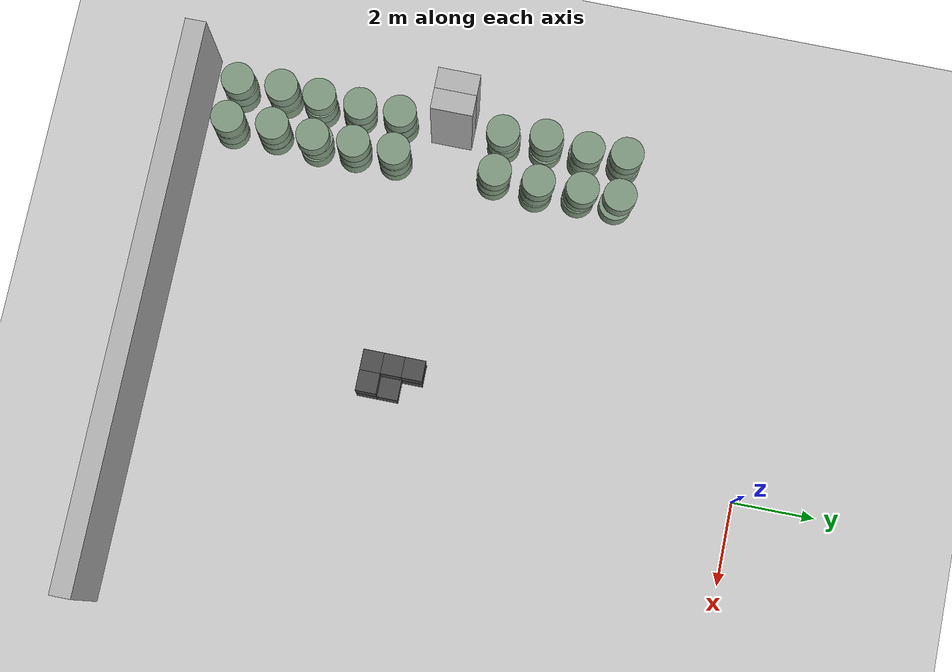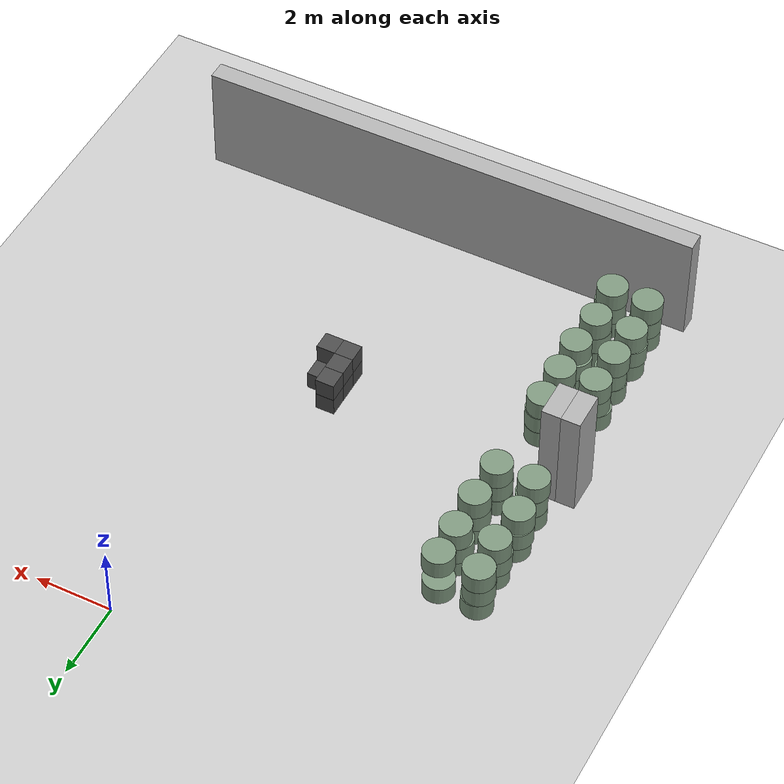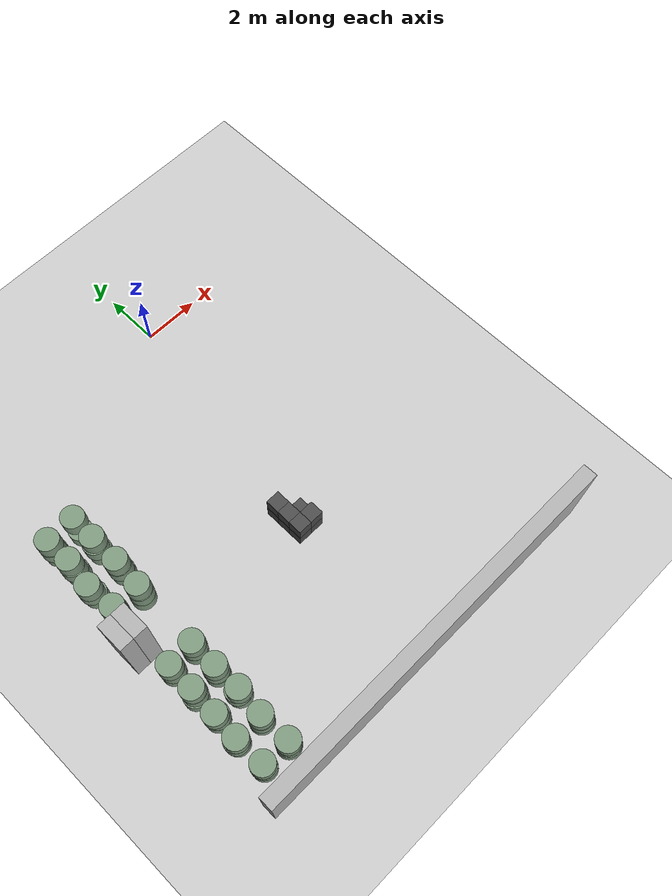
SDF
<sdf version="1.6">
 <world name="default">
  <include><uri>model://ground_plane</uri></include>
  <model name="wall_1">
   <pose>-8.0 -8.25 1.5 0 -0 0</pose>
   <static>True</static>
   <link name="link">
    <inertial>
     <mass>100</mass>
     <inertia>
      <ixx>0.166667</ixx>
      <ixy>0</ixy>
      <ixz>0</ixz>
      <iyy>0.166667</iyy>
      <iyz>0</iyz>
      <izz>0.166667</izz>
     </inertia>
    </inertial>
    <collision name="collision"><geometry><box><size>0.5 1.0 3.0</size></box></geometry></collision>
    <visual name="visual">
     <geometry><box><size>0.5 1.0 3.0</size></box></geometry>
     <material><ambient>0.7 0.7 0.7 1</ambient><diffuse>0.7 0.7 0.7 1</diffuse></material>
    </visual>
   </link>
  </model>
  <model name="wall_4">
   <pose>-7.5 -8.25 1.5 0 -0 0</pose>
   <static>True</static>
   <link name="link">
    <inertial>
     <mass>100</mass>
     <inertia>
      <ixx>0.166667</ixx>
      <ixy>0</ixy>
      <ixz>0</ixz>
      <iyy>0.166667</iyy>
      <iyz>0</iyz>
      <izz>0.166667</izz>
     </inertia>
    </inertial>
    <collision name="collision"><geometry><box><size>0.5 1.0 3.0</size></box></geometry></collision>
    <visual name="visual">
     <geometry><box><size>0.5 1.0 3.0</size></box></geometry>
     <material><ambient>0.7 0.7 0.7 1</ambient><diffuse>0.7 0.7 0.7 1</diffuse></material>
    </visual>
   </link>
  </model>
  <model name="wall_14">
   <pose>-1.5 -14.5 1.5 0 -0 0</pose>
   <static>True</static>
   <link name="link">
    <inertial>
     <mass>100</mass>
     <inertia>
      <ixx>0.166667</ixx>
      <ixy>0</ixy>
      <ixz>0</ixz>
      <iyy>0.166667</iyy>
      <iyz>0</iyz>
      <izz>0.166667</izz>
     </inertia>
    </inertial>
    <collision name="collision"><geometry><box><size>13.5 0.5 3.0</size></box></geometry></collision>
    <visual name="visual">
     <geometry><box><size>13.5 0.5 3.0</size></box></geometry>
     <material><ambient>0.7 0.7 0.7 1</ambient><diffuse>0.7 0.7 0.7 1</diffuse></material>
    </visual>
   </link>
  </model>
  <model name="unit_box_4">
   <pose>-1.5 -9.0 0.25 0 -0 0</pose>
   <static>True</static>
   <link name="link">
    <inertial>
     <mass>100</mass>
     <inertia>
      <ixx>0.166667</ixx>
      <ixy>0</ixy>
      <ixz>0</ixz>
      <iyy>0.166667</iyy>
      <iyz>0</iyz>
      <izz>0.166667</izz>
     </inertia>
    </inertial>
    <collision name="collision"><geometry><box><size>0.5 0.5 0.5</size></box></geometry></collision>
    <visual name="visual">
     <geometry><box><size>0.5 0.5 0.5</size></box></geometry>
     <material><ambient>0.3 0.3 0.3 1</ambient><diffuse>0.3 0.3 0.3 1</diffuse></material>
    </visual>
   </link>
  </model>
  <model name="unit_box_5">
   <pose>-1.5 -9.0 0.75 0 -0 0</pose>
   <static>True</static>
   <link name="link">
    <inertial>
     <mass>100</mass>
     <inertia>
      <ixx>0.166667</ixx>
      <ixy>0</ixy>
      <ixz>0</ixz>
      <iyy>0.166667</iyy>
      <iyz>0</iyz>
      <izz>0.166667</izz>
     </inertia>
    </inertial>
    <collision name="collision"><geometry><box><size>0.5 0.5 0.5</size></box></geometry></collision>
    <visual name="visual">
     <geometry><box><size>0.5 0.5 0.5</size></box></geometry>
     <material><ambient>0.3 0.3 0.3 1</ambient><diffuse>0.3 0.3 0.3 1</diffuse></material>
    </visual>
   </link>
  </model>
  <model name="unit_box_6">
   <pose>-1.5 -8.5 0.25 0 -0 0</pose>
   <static>True</static>
   <link name="link">
    <inertial>
     <mass>100</mass>
     <inertia>
      <ixx>0.166667</ixx>
      <ixy>0</ixy>
      <ixz>0</ixz>
      <iyy>0.166667</iyy>
      <iyz>0</iyz>
      <izz>0.166667</izz>
     </inertia>
    </inertial>
    <collision name="collision"><geometry><box><size>0.5 0.5 0.5</size></box></geometry></collision>
    <visual name="visual">
     <geometry><box><size>0.5 0.5 0.5</size></box></geometry>
     <material><ambient>0.3 0.3 0.3 1</ambient><diffuse>0.3 0.3 0.3 1</diffuse></material>
    </visual>
   </link>
  </model>
  <model name="unit_box_7">
   <pose>-1.5 -8.5 0.75 0 -0 0</pose>
   <static>True</static>
   <link name="link">
    <inertial>
     <mass>100</mass>
     <inertia>
      <ixx>0.166667</ixx>
      <ixy>0</ixy>
      <ixz>0</ixz>
      <iyy>0.166667</iyy>
      <iyz>0</iyz>
      <izz>0.166667</izz>
     </inertia>
    </inertial>
    <collision name="collision"><geometry><box><size>0.5 0.5 0.5</size></box></geometry></collision>
    <visual name="visual">
     <geometry><box><size>0.5 0.5 0.5</size></box></geometry>
     <material><ambient>0.3 0.3 0.3 1</ambient><diffuse>0.3 0.3 0.3 1</diffuse></material>
    </visual>
   </link>
  </model>
  <model name="unit_box_8">
   <pose>-1.5 -8.0 0.25 0 -0 0</pose>
   <static>True</static>
   <link name="link">
    <inertial>
     <mass>100</mass>
     <inertia>
      <ixx>0.166667</ixx>
      <ixy>0</ixy>
      <ixz>0</ixz>
      <iyy>0.166667</iyy>
      <iyz>0</iyz>
      <izz>0.166667</izz>
     </inertia>
    </inertial>
    <collision name="collision"><geometry><box><size>0.5 0.5 0.5</size></box></geometry></collision>
    <visual name="visual">
     <geometry><box><size>0.5 0.5 0.5</size></box></geometry>
     <material><ambient>0.3 0.3 0.3 1</ambient><diffuse>0.3 0.3 0.3 1</diffuse></material>
    </visual>
   </link>
  </model>
  <model name="unit_box_9">
   <pose>-1.5 -8.0 0.75 0 -0 0</pose>
   <static>True</static>
   <link name="link">
    <inertial>
     <mass>100</mass>
     <inertia>
      <ixx>0.166667</ixx>
      <ixy>0</ixy>
      <ixz>0</ixz>
      <iyy>0.166667</iyy>
      <iyz>0</iyz>
      <izz>0.166667</izz>
     </inertia>
    </inertial>
    <collision name="collision"><geometry><box><size>0.5 0.5 0.5</size></box></geometry></collision>
    <visual name="visual">
     <geometry><box><size>0.5 0.5 0.5</size></box></geometry>
     <material><ambient>0.3 0.3 0.3 1</ambient><diffuse>0.3 0.3 0.3 1</diffuse></material>
    </visual>
   </link>
  </model>
  <model name="unit_box_10">
   <pose>-1.0 -9.0 0.25 0 -0 0</pose>
   <static>True</static>
   <link name="link">
    <inertial>
     <mass>100</mass>
     <inertia>
      <ixx>0.166667</ixx>
      <ixy>0</ixy>
      <ixz>0</ixz>
      <iyy>0.166667</iyy>
      <iyz>0</iyz>
      <izz>0.166667</izz>
     </inertia>
    </inertial>
    <collision name="collision"><geometry><box><size>0.5 0.5 0.5</size></box></geometry></collision>
    <visual name="visual">
     <geometry><box><size>0.5 0.5 0.5</size></box></geometry>
     <material><ambient>0.3 0.3 0.3 1</ambient><diffuse>0.3 0.3 0.3 1</diffuse></material>
    </visual>
   </link>
  </model>
  <model name="unit_box_11">
   <pose>-1.0 -9.0 0.75 0 -0 0</pose>
   <static>True</static>
   <link name="link">
    <inertial>
     <mass>100</mass>
     <inertia>
      <ixx>0.166667</ixx>
      <ixy>0</ixy>
      <ixz>0</ixz>
      <iyy>0.166667</iyy>
      <iyz>0</iyz>
      <izz>0.166667</izz>
     </inertia>
    </inertial>
    <collision name="collision"><geometry><box><size>0.5 0.5 0.5</size></box></geometry></collision>
    <visual name="visual">
     <geometry><box><size>0.5 0.5 0.5</size></box></geometry>
     <material><ambient>0.3 0.3 0.3 1</ambient><diffuse>0.3 0.3 0.3 1</diffuse></material>
    </visual>
   </link>
  </model>
  <model name="unit_box_12">
   <pose>-1.0 -8.5 0.25 0 -0 0</pose>
   <static>True</static>
   <link name="link">
    <inertial>
     <mass>100</mass>
     <inertia>
      <ixx>0.166667</ixx>
      <ixy>0</ixy>
      <ixz>0</ixz>
      <iyy>0.166667</iyy>
      <iyz>0</iyz>
      <izz>0.166667</izz>
     </inertia>
    </inertial>
    <collision name="collision"><geometry><box><size>0.5 0.5 0.5</size></box></geometry></collision>
    <visual name="visual">
     <geometry><box><size>0.5 0.5 0.5</size></box></geometry>
     <material><ambient>0.3 0.3 0.3 1</ambient><diffuse>0.3 0.3 0.3 1</diffuse></material>
    </visual>
   </link>
  </model>
  <model name="unit_cylinder_0">
   <pose>-7.47507695646 -13.5184655306 0.25 0 -0 0</pose>
   <static>True</static>
   <link name="link">
    <inertial>
     <mass>100</mass>
     <inertia><ixx>0.145833</ixx><ixy>0</ixy><ixz>0</ixz><iyy>0.145833</iyy><iyz>0</iyz><izz>0.125</izz></inertia>
    </inertial>
    <collision name="collision">
     <geometry><cylinder><radius>0.4</radius><length>0.5</length></cylinder></geometry>
     <max_contacts>100</max_contacts>
    </collision>
    <visual name="visual">
     <geometry><cylinder><radius>0.4</radius><length>0.5</length></cylinder></geometry>
     <material><ambient>0.5 0.6 0.5 1</ambient><diffuse>0.5 0.6 0.5 1</diffuse></material>
    </visual>
   </link>
  </model>
  <model name="unit_cylinder_1">
   <pose>-7.48919808959 -13.4883875363 0.75 0 -0 0</pose>
   <static>True</static>
   <link name="link">
    <inertial>
     <mass>100</mass>
     <inertia><ixx>0.145833</ixx><ixy>0</ixy><ixz>0</ixz><iyy>0.145833</iyy><iyz>0</iyz><izz>0.125</izz></inertia>
    </inertial>
    <collision name="collision">
     <geometry><cylinder><radius>0.4</radius><length>0.5</length></cylinder></geometry>
     <max_contacts>100</max_contacts>
    </collision>
    <visual name="visual">
     <geometry><cylinder><radius>0.4</radius><length>0.5</length></cylinder></geometry>
     <material><ambient>0.5 0.6 0.5 1</ambient><diffuse>0.5 0.6 0.5 1</diffuse></material>
    </visual>
   </link>
  </model>
  <model name="unit_cylinder_2">
   <pose>-7.48988754666 -13.5205118433 1.25 0 -0 0</pose>
   <static>True</static>
   <link name="link">
    <inertial>
     <mass>100</mass>
     <inertia><ixx>0.145833</ixx><ixy>0</ixy><ixz>0</ixz><iyy>0.145833</iyy><iyz>0</iyz><izz>0.125</izz></inertia>
    </inertial>
    <collision name="collision">
     <geometry><cylinder><radius>0.4</radius><length>0.5</length></cylinder></geometry>
     <max_contacts>100</max_contacts>
    </collision>
    <visual name="visual">
     <geometry><cylinder><radius>0.4</radius><length>0.5</length></cylinder></geometry>
     <material><ambient>0.5 0.6 0.5 1</ambient><diffuse>0.5 0.6 0.5 1</diffuse></material>
    </visual>
   </link>
  </model>
  <model name="unit_cylinder_3">
   <pose>-7.53306076907 -12.4352780007 0.25 0 -0 0</pose>
   <static>True</static>
   <link name="link">
    <inertial>
     <mass>100</mass>
     <inertia><ixx>0.145833</ixx><ixy>0</ixy><ixz>0</ixz><iyy>0.145833</iyy><iyz>0</iyz><izz>0.125</izz></inertia>
    </inertial>
    <collision name="collision">
     <geometry><cylinder><radius>0.4</radius><length>0.5</length></cylinder></geometry>
     <max_contacts>100</max_contacts>
    </collision>
    <visual name="visual">
     <geometry><cylinder><radius>0.4</radius><length>0.5</length></cylinder></geometry>
     <material><ambient>0.5 0.6 0.5 1</ambient><diffuse>0.5 0.6 0.5 1</diffuse></material>
    </visual>
   </link>
  </model>
  <model name="unit_cylinder_4">
   <pose>-7.56399221615 -12.4517953891 0.75 0 -0 0</pose>
   <static>True</static>
   <link name="link">
    <inertial>
     <mass>100</mass>
     <inertia><ixx>0.145833</ixx><ixy>0</ixy><ixz>0</ixz><iyy>0.145833</iyy><iyz>0</iyz><izz>0.125</izz></inertia>
    </inertial>
    <collision name="collision">
     <geometry><cylinder><radius>0.4</radius><length>0.5</length></cylinder></geometry>
     <max_contacts>100</max_contacts>
    </collision>
    <visual name="visual">
     <geometry><cylinder><radius>0.4</radius><length>0.5</length></cylinder></geometry>
     <material><ambient>0.5 0.6 0.5 1</ambient><diffuse>0.5 0.6 0.5 1</diffuse></material>
    </visual>
   </link>
  </model>
  <model name="unit_cylinder_5">
   <pose>-7.53500089518 -12.4614403091 1.25 0 -0 0</pose>
   <static>True</static>
   <link name="link">
    <inertial>
     <mass>100</mass>
     <inertia><ixx>0.145833</ixx><ixy>0</ixy><ixz>0</ixz><iyy>0.145833</iyy><iyz>0</iyz><izz>0.125</izz></inertia>
    </inertial>
    <collision name="collision">
     <geometry><cylinder><radius>0.4</radius><length>0.5</length></cylinder></geometry>
     <max_contacts>100</max_contacts>
    </collision>
    <visual name="visual">
     <geometry><cylinder><radius>0.4</radius><length>0.5</length></cylinder></geometry>
     <material><ambient>0.5 0.6 0.5 1</ambient><diffuse>0.5 0.6 0.5 1</diffuse></material>
    </visual>
   </link>
  </model>
  <model name="unit_cylinder_6">
   <pose>-7.46616859764 -11.5065697093 0.25 0 -0 0</pose>
   <static>True</static>
   <link name="link">
    <inertial>
     <mass>100</mass>
     <inertia><ixx>0.145833</ixx><ixy>0</ixy><ixz>0</ixz><iyy>0.145833</iyy><iyz>0</iyz><izz>0.125</izz></inertia>
    </inertial>
    <collision name="collision">
     <geometry><cylinder><radius>0.4</radius><length>0.5</length></cylinder></geometry>
     <max_contacts>100</max_contacts>
    </collision>
    <visual name="visual">
     <geometry><cylinder><radius>0.4</radius><length>0.5</length></cylinder></geometry>
     <material><ambient>0.5 0.6 0.5 1</ambient><diffuse>0.5 0.6 0.5 1</diffuse></material>
    </visual>
   </link>
  </model>
  <model name="unit_cylinder_7">
   <pose>-7.4452347965 -11.5127901464 0.75 0 -0 0</pose>
   <static>True</static>
   <link name="link">
    <inertial>
     <mass>100</mass>
     <inertia><ixx>0.145833</ixx><ixy>0</ixy><ixz>0</ixz><iyy>0.145833</iyy><iyz>0</iyz><izz>0.125</izz></inertia>
    </inertial>
    <collision name="collision">
     <geometry><cylinder><radius>0.4</radius><length>0.5</length></cylinder></geometry>
     <max_contacts>100</max_contacts>
    </collision>
    <visual name="visual">
     <geometry><cylinder><radius>0.4</radius><length>0.5</length></cylinder></geometry>
     <material><ambient>0.5 0.6 0.5 1</ambient><diffuse>0.5 0.6 0.5 1</diffuse></material>
    </visual>
   </link>
  </model>
  <model name="unit_cylinder_8">
   <pose>-7.49248867613 -11.5228580544 1.25 0 -0 0</pose>
   <static>True</static>
   <link name="link">
    <inertial>
     <mass>100</mass>
     <inertia><ixx>0.145833</ixx><ixy>0</ixy><ixz>0</ixz><iyy>0.145833</iyy><iyz>0</iyz><izz>0.125</izz></inertia>
    </inertial>
    <collision name="collision">
     <geometry><cylinder><radius>0.4</radius><length>0.5</length></cylinder></geometry>
     <max_contacts>100</max_contacts>
    </collision>
    <visual name="visual">
     <geometry><cylinder><radius>0.4</radius><length>0.5</length></cylinder></geometry>
     <material><ambient>0.5 0.6 0.5 1</ambient><diffuse>0.5 0.6 0.5 1</diffuse></material>
    </visual>
   </link>
  </model>
  <model name="unit_cylinder_9">
   <pose>-7.48989591758 -10.567483093 0.25 0 -0 0</pose>
   <static>True</static>
   <link name="link">
    <inertial>
     <mass>100</mass>
     <inertia><ixx>0.145833</ixx><ixy>0</ixy><ixz>0</ixz><iyy>0.145833</iyy><iyz>0</iyz><izz>0.125</izz></inertia>
    </inertial>
    <collision name="collision">
     <geometry><cylinder><radius>0.4</radius><length>0.5</length></cylinder></geometry>
     <max_contacts>100</max_contacts>
    </collision>
    <visual name="visual">
     <geometry><cylinder><radius>0.4</radius><length>0.5</length></cylinder></geometry>
     <material><ambient>0.5 0.6 0.5 1</ambient><diffuse>0.5 0.6 0.5 1</diffuse></material>
    </visual>
   </link>
  </model>
  <model name="unit_cylinder_10">
   <pose>-7.44961254139 -10.5366978678 0.75 0 -0 0</pose>
   <static>True</static>
   <link name="link">
    <inertial>
     <mass>100</mass>
     <inertia><ixx>0.145833</ixx><ixy>0</ixy><ixz>0</ixz><iyy>0.145833</iyy><iyz>0</iyz><izz>0.125</izz></inertia>
    </inertial>
    <collision name="collision">
     <geometry><cylinder><radius>0.4</radius><length>0.5</length></cylinder></geometry>
     <max_contacts>100</max_contacts>
    </collision>
    <visual name="visual">
     <geometry><cylinder><radius>0.4</radius><length>0.5</length></cylinder></geometry>
     <material><ambient>0.5 0.6 0.5 1</ambient><diffuse>0.5 0.6 0.5 1</diffuse></material>
    </visual>
   </link>
  </model>
  <model name="unit_cylinder_11">
   <pose>-7.46090301996 -10.5196549501 1.25 0 -0 0</pose>
   <static>True</static>
   <link name="link">
    <inertial>
     <mass>100</mass>
     <inertia><ixx>0.145833</ixx><ixy>0</ixy><ixz>0</ixz><iyy>0.145833</iyy><iyz>0</iyz><izz>0.125</izz></inertia>
    </inertial>
    <collision name="collision">
     <geometry><cylinder><radius>0.4</radius><length>0.5</length></cylinder></geometry>
     <max_contacts>100</max_contacts>
    </collision>
    <visual name="visual">
     <geometry><cylinder><radius>0.4</radius><length>0.5</length></cylinder></geometry>
     <material><ambient>0.5 0.6 0.5 1</ambient><diffuse>0.5 0.6 0.5 1</diffuse></material>
    </visual>
   </link>
  </model>
  <model name="unit_cylinder_12">
   <pose>-7.45391872847 -9.52343154162 0.25 0 -0 0</pose>
   <static>True</static>
   <link name="link">
    <inertial>
     <mass>100</mass>
     <inertia><ixx>0.145833</ixx><ixy>0</ixy><ixz>0</ixz><iyy>0.145833</iyy><iyz>0</iyz><izz>0.125</izz></inertia>
    </inertial>
    <collision name="collision">
     <geometry><cylinder><radius>0.4</radius><length>0.5</length></cylinder></geometry>
     <max_contacts>100</max_contacts>
    </collision>
    <visual name="visual">
     <geometry><cylinder><radius>0.4</radius><length>0.5</length></cylinder></geometry>
     <material><ambient>0.5 0.6 0.5 1</ambient><diffuse>0.5 0.6 0.5 1</diffuse></material>
    </visual>
   </link>
  </model>
  <model name="unit_cylinder_13">
   <pose>-7.4441769372 -9.55297666337 0.75 0 -0 0</pose>
   <static>True</static>
   <link name="link">
    <inertial>
     <mass>100</mass>
     <inertia><ixx>0.145833</ixx><ixy>0</ixy><ixz>0</ixz><iyy>0.145833</iyy><iyz>0</iyz><izz>0.125</izz></inertia>
    </inertial>
    <collision name="collision">
     <geometry><cylinder><radius>0.4</radius><length>0.5</length></cylinder></geometry>
     <max_contacts>100</max_contacts>
    </collision>
    <visual name="visual">
     <geometry><cylinder><radius>0.4</radius><length>0.5</length></cylinder></geometry>
     <material><ambient>0.5 0.6 0.5 1</ambient><diffuse>0.5 0.6 0.5 1</diffuse></material>
    </visual>
   </link>
  </model>
  <model name="unit_cylinder_14">
   <pose>-7.46181782529 -9.55027035199 1.25 0 -0 0</pose>
   <static>True</static>
   <link name="link">
    <inertial>
     <mass>100</mass>
     <inertia><ixx>0.145833</ixx><ixy>0</ixy><ixz>0</ixz><iyy>0.145833</iyy><iyz>0</iyz><izz>0.125</izz></inertia>
    </inertial>
    <collision name="collision">
     <geometry><cylinder><radius>0.4</radius><length>0.5</length></cylinder></geometry>
     <max_contacts>100</max_contacts>
    </collision>
    <visual name="visual">
     <geometry><cylinder><radius>0.4</radius><length>0.5</length></cylinder></geometry>
     <material><ambient>0.5 0.6 0.5 1</ambient><diffuse>0.5 0.6 0.5 1</diffuse></material>
    </visual>
   </link>
  </model>
  <model name="unit_cylinder_15">
   <pose>-7.45838966102 -6.98921450333 0.25 0 -0 0</pose>
   <static>True</static>
   <link name="link">
    <inertial>
     <mass>100</mass>
     <inertia><ixx>0.145833</ixx><ixy>0</ixy><ixz>0</ixz><iyy>0.145833</iyy><iyz>0</iyz><izz>0.125</izz></inertia>
    </inertial>
    <collision name="collision">
     <geometry><cylinder><radius>0.4</radius><length>0.5</length></cylinder></geometry>
     <max_contacts>100</max_contacts>
    </collision>
    <visual name="visual">
     <geometry><cylinder><radius>0.4</radius><length>0.5</length></cylinder></geometry>
     <material><ambient>0.5 0.6 0.5 1</ambient><diffuse>0.5 0.6 0.5 1</diffuse></material>
    </visual>
   </link>
  </model>
  <model name="unit_cylinder_16">
   <pose>-7.45283166203 -6.99478115628 0.75 0 -0 0</pose>
   <static>True</static>
   <link name="link">
    <inertial>
     <mass>100</mass>
     <inertia><ixx>0.145833</ixx><ixy>0</ixy><ixz>0</ixz><iyy>0.145833</iyy><iyz>0</iyz><izz>0.125</izz></inertia>
    </inertial>
    <collision name="collision">
     <geometry><cylinder><radius>0.4</radius><length>0.5</length></cylinder></geometry>
     <max_contacts>100</max_contacts>
    </collision>
    <visual name="visual">
     <geometry><cylinder><radius>0.4</radius><length>0.5</length></cylinder></geometry>
     <material><ambient>0.5 0.6 0.5 1</ambient><diffuse>0.5 0.6 0.5 1</diffuse></material>
    </visual>
   </link>
  </model>
  <model name="unit_cylinder_17">
   <pose>-7.4743268716 -7.03710923444 1.25 0 -0 0</pose>
   <static>True</static>
   <link name="link">
    <inertial>
     <mass>100</mass>
     <inertia><ixx>0.145833</ixx><ixy>0</ixy><ixz>0</ixz><iyy>0.145833</iyy><iyz>0</iyz><izz>0.125</izz></inertia>
    </inertial>
    <collision name="collision">
     <geometry><cylinder><radius>0.4</radius><length>0.5</length></cylinder></geometry>
     <max_contacts>100</max_contacts>
    </collision>
    <visual name="visual">
     <geometry><cylinder><radius>0.4</radius><length>0.5</length></cylinder></geometry>
     <material><ambient>0.5 0.6 0.5 1</ambient><diffuse>0.5 0.6 0.5 1</diffuse></material>
    </visual>
   </link>
  </model>
  <model name="unit_cylinder_18">
   <pose>-7.52551647035 -5.96425090688 0.25 0 -0 0</pose>
   <static>True</static>
   <link name="link">
    <inertial>
     <mass>100</mass>
     <inertia><ixx>0.145833</ixx><ixy>0</ixy><ixz>0</ixz><iyy>0.145833</iyy><iyz>0</iyz><izz>0.125</izz></inertia>
    </inertial>
    <collision name="collision">
     <geometry><cylinder><radius>0.4</radius><length>0.5</length></cylinder></geometry>
     <max_contacts>100</max_contacts>
    </collision>
    <visual name="visual">
     <geometry><cylinder><radius>0.4</radius><length>0.5</length></cylinder></geometry>
     <material><ambient>0.5 0.6 0.5 1</ambient><diffuse>0.5 0.6 0.5 1</diffuse></material>
    </visual>
   </link>
  </model>
  <model name="unit_cylinder_19">
   <pose>-7.58038854318 -5.96064904541 0.75 0 -0 0</pose>
   <static>True</static>
   <link name="link">
    <inertial>
     <mass>100</mass>
     <inertia><ixx>0.145833</ixx><ixy>0</ixy><ixz>0</ixz><iyy>0.145833</iyy><iyz>0</iyz><izz>0.125</izz></inertia>
    </inertial>
    <collision name="collision">
     <geometry><cylinder><radius>0.4</radius><length>0.5</length></cylinder></geometry>
     <max_contacts>100</max_contacts>
    </collision>
    <visual name="visual">
     <geometry><cylinder><radius>0.4</radius><length>0.5</length></cylinder></geometry>
     <material><ambient>0.5 0.6 0.5 1</ambient><diffuse>0.5 0.6 0.5 1</diffuse></material>
    </visual>
   </link>
  </model>
  <model name="unit_cylinder_20">
   <pose>-7.57448412475 -6.00135348104 1.25 0 -0 0</pose>
   <static>True</static>
   <link name="link">
    <inertial>
     <mass>100</mass>
     <inertia><ixx>0.145833</ixx><ixy>0</ixy><ixz>0</ixz><iyy>0.145833</iyy><iyz>0</iyz><izz>0.125</izz></inertia>
    </inertial>
    <collision name="collision">
     <geometry><cylinder><radius>0.4</radius><length>0.5</length></cylinder></geometry>
     <max_contacts>100</max_contacts>
    </collision>
    <visual name="visual">
     <geometry><cylinder><radius>0.4</radius><length>0.5</length></cylinder></geometry>
     <material><ambient>0.5 0.6 0.5 1</ambient><diffuse>0.5 0.6 0.5 1</diffuse></material>
    </visual>
   </link>
  </model>
  <model name="unit_cylinder_21">
   <pose>-7.43834465269 -4.99275464617 0.25 0 -0 0</pose>
   <static>True</static>
   <link name="link">
    <inertial>
     <mass>100</mass>
     <inertia><ixx>0.145833</ixx><ixy>0</ixy><ixz>0</ixz><iyy>0.145833</iyy><iyz>0</iyz><izz>0.125</izz></inertia>
    </inertial>
    <collision name="collision">
     <geometry><cylinder><radius>0.4</radius><length>0.5</length></cylinder></geometry>
     <max_contacts>100</max_contacts>
    </collision>
    <visual name="visual">
     <geometry><cylinder><radius>0.4</radius><length>0.5</length></cylinder></geometry>
     <material><ambient>0.5 0.6 0.5 1</ambient><diffuse>0.5 0.6 0.5 1</diffuse></material>
    </visual>
   </link>
  </model>
  <model name="unit_cylinder_22">
   <pose>-7.47948661169 -5.00437541617 0.75 0 -0 0</pose>
   <static>True</static>
   <link name="link">
    <inertial>
     <mass>100</mass>
     <inertia><ixx>0.145833</ixx><ixy>0</ixy><ixz>0</ixz><iyy>0.145833</iyy><iyz>0</iyz><izz>0.125</izz></inertia>
    </inertial>
    <collision name="collision">
     <geometry><cylinder><radius>0.4</radius><length>0.5</length></cylinder></geometry>
     <max_contacts>100</max_contacts>
    </collision>
    <visual name="visual">
     <geometry><cylinder><radius>0.4</radius><length>0.5</length></cylinder></geometry>
     <material><ambient>0.5 0.6 0.5 1</ambient><diffuse>0.5 0.6 0.5 1</diffuse></material>
    </visual>
   </link>
  </model>
  <model name="unit_cylinder_23">
   <pose>-7.46427107248 -4.96606784935 1.25 0 -0 0</pose>
   <static>True</static>
   <link name="link">
    <inertial>
     <mass>100</mass>
     <inertia><ixx>0.145833</ixx><ixy>0</ixy><ixz>0</ixz><iyy>0.145833</iyy><iyz>0</iyz><izz>0.125</izz></inertia>
    </inertial>
    <collision name="collision">
     <geometry><cylinder><radius>0.4</radius><length>0.5</length></cylinder></geometry>
     <max_contacts>100</max_contacts>
    </collision>
    <visual name="visual">
     <geometry><cylinder><radius>0.4</radius><length>0.5</length></cylinder></geometry>
     <material><ambient>0.5 0.6 0.5 1</ambient><diffuse>0.5 0.6 0.5 1</diffuse></material>
    </visual>
   </link>
  </model>
  <model name="unit_cylinder_24">
   <pose>-7.49305955792 -4.02755683077 0.25 0 -0 0</pose>
   <static>True</static>
   <link name="link">
    <inertial>
     <mass>100</mass>
     <inertia><ixx>0.145833</ixx><ixy>0</ixy><ixz>0</ixz><iyy>0.145833</iyy><iyz>0</iyz><izz>0.125</izz></inertia>
    </inertial>
    <collision name="collision">
     <geometry><cylinder><radius>0.4</radius><length>0.5</length></cylinder></geometry>
     <max_contacts>100</max_contacts>
    </collision>
    <visual name="visual">
     <geometry><cylinder><radius>0.4</radius><length>0.5</length></cylinder></geometry>
     <material><ambient>0.5 0.6 0.5 1</ambient><diffuse>0.5 0.6 0.5 1</diffuse></material>
    </visual>
   </link>
  </model>
  <model name="unit_cylinder_25">
   <pose>-7.51997503977 -4.04813327472 0.75 0 -0 0</pose>
   <static>True</static>
   <link name="link">
    <inertial>
     <mass>100</mass>
     <inertia><ixx>0.145833</ixx><ixy>0</ixy><ixz>0</ixz><iyy>0.145833</iyy><iyz>0</iyz><izz>0.125</izz></inertia>
    </inertial>
    <collision name="collision">
     <geometry><cylinder><radius>0.4</radius><length>0.5</length></cylinder></geometry>
     <max_contacts>100</max_contacts>
    </collision>
    <visual name="visual">
     <geometry><cylinder><radius>0.4</radius><length>0.5</length></cylinder></geometry>
     <material><ambient>0.5 0.6 0.5 1</ambient><diffuse>0.5 0.6 0.5 1</diffuse></material>
    </visual>
   </link>
  </model>
  <model name="unit_cylinder_26">
   <pose>-7.51072886036 -4.02894907394 1.25 0 -0 0</pose>
   <static>True</static>
   <link name="link">
    <inertial>
     <mass>100</mass>
     <inertia><ixx>0.145833</ixx><ixy>0</ixy><ixz>0</ixz><iyy>0.145833</iyy><iyz>0</iyz><izz>0.125</izz></inertia>
    </inertial>
    <collision name="collision">
     <geometry><cylinder><radius>0.4</radius><length>0.5</length></cylinder></geometry>
     <max_contacts>100</max_contacts>
    </collision>
    <visual name="visual">
     <geometry><cylinder><radius>0.4</radius><length>0.5</length></cylinder></geometry>
     <material><ambient>0.5 0.6 0.5 1</ambient><diffuse>0.5 0.6 0.5 1</diffuse></material>
    </visual>
   </link>
  </model>
  <model name="unit_cylinder_54">
   <pose>-6.51695698184 -13.5650201652 0.25 0 -0 0</pose>
   <static>True</static>
   <link name="link">
    <inertial>
     <mass>100</mass>
     <inertia><ixx>0.145833</ixx><ixy>0</ixy><ixz>0</ixz><iyy>0.145833</iyy><iyz>0</iyz><izz>0.125</izz></inertia>
    </inertial>
    <collision name="collision">
     <geometry><cylinder><radius>0.4</radius><length>0.5</length></cylinder></geometry>
     <max_contacts>100</max_contacts>
    </collision>
    <visual name="visual">
     <geometry><cylinder><radius>0.4</radius><length>0.5</length></cylinder></geometry>
     <material><ambient>0.5 0.6 0.5 1</ambient><diffuse>0.5 0.6 0.5 1</diffuse></material>
    </visual>
   </link>
  </model>
  <model name="unit_cylinder_55">
   <pose>-6.49743170156 -13.5441283454 0.75 0 -0 0</pose>
   <static>True</static>
   <link name="link">
    <inertial>
     <mass>100</mass>
     <inertia><ixx>0.145833</ixx><ixy>0</ixy><ixz>0</ixz><iyy>0.145833</iyy><iyz>0</iyz><izz>0.125</izz></inertia>
    </inertial>
    <collision name="collision">
     <geometry><cylinder><radius>0.4</radius><length>0.5</length></cylinder></geometry>
     <max_contacts>100</max_contacts>
    </collision>
    <visual name="visual">
     <geometry><cylinder><radius>0.4</radius><length>0.5</length></cylinder></geometry>
     <material><ambient>0.5 0.6 0.5 1</ambient><diffuse>0.5 0.6 0.5 1</diffuse></material>
    </visual>
   </link>
  </model>
  <model name="unit_cylinder_56">
   <pose>-6.52297176965 -13.5604744192 1.25 0 -0 0</pose>
   <static>True</static>
   <link name="link">
    <inertial>
     <mass>100</mass>
     <inertia><ixx>0.145833</ixx><ixy>0</ixy><ixz>0</ixz><iyy>0.145833</iyy><iyz>0</iyz><izz>0.125</izz></inertia>
    </inertial>
    <collision name="collision">
     <geometry><cylinder><radius>0.4</radius><length>0.5</length></cylinder></geometry>
     <max_contacts>100</max_contacts>
    </collision>
    <visual name="visual">
     <geometry><cylinder><radius>0.4</radius><length>0.5</length></cylinder></geometry>
     <material><ambient>0.5 0.6 0.5 1</ambient><diffuse>0.5 0.6 0.5 1</diffuse></material>
    </visual>
   </link>
  </model>
  <model name="unit_cylinder_57">
   <pose>-6.57845692607 -12.4813597079 0.25 0 -0 0</pose>
   <static>True</static>
   <link name="link">
    <inertial>
     <mass>100</mass>
     <inertia><ixx>0.145833</ixx><ixy>0</ixy><ixz>0</ixz><iyy>0.145833</iyy><iyz>0</iyz><izz>0.125</izz></inertia>
    </inertial>
    <collision name="collision">
     <geometry><cylinder><radius>0.4</radius><length>0.5</length></cylinder></geometry>
     <max_contacts>100</max_contacts>
    </collision>
    <visual name="visual">
     <geometry><cylinder><radius>0.4</radius><length>0.5</length></cylinder></geometry>
     <material><ambient>0.5 0.6 0.5 1</ambient><diffuse>0.5 0.6 0.5 1</diffuse></material>
    </visual>
   </link>
  </model>
  <model name="unit_cylinder_58">
   <pose>-6.58572968797 -12.4885098634 0.75 0 -0 0</pose>
   <static>True</static>
   <link name="link">
    <inertial>
     <mass>100</mass>
     <inertia><ixx>0.145833</ixx><ixy>0</ixy><ixz>0</ixz><iyy>0.145833</iyy><iyz>0</iyz><izz>0.125</izz></inertia>
    </inertial>
    <collision name="collision">
     <geometry><cylinder><radius>0.4</radius><length>0.5</length></cylinder></geometry>
     <max_contacts>100</max_contacts>
    </collision>
    <visual name="visual">
     <geometry><cylinder><radius>0.4</radius><length>0.5</length></cylinder></geometry>
     <material><ambient>0.5 0.6 0.5 1</ambient><diffuse>0.5 0.6 0.5 1</diffuse></material>
    </visual>
   </link>
  </model>
  <model name="unit_cylinder_59">
   <pose>-6.56980012984 -12.4772040137 1.25 0 -0 0</pose>
   <static>True</static>
   <link name="link">
    <inertial>
     <mass>100</mass>
     <inertia><ixx>0.145833</ixx><ixy>0</ixy><ixz>0</ixz><iyy>0.145833</iyy><iyz>0</iyz><izz>0.125</izz></inertia>
    </inertial>
    <collision name="collision">
     <geometry><cylinder><radius>0.4</radius><length>0.5</length></cylinder></geometry>
     <max_contacts>100</max_contacts>
    </collision>
    <visual name="visual">
     <geometry><cylinder><radius>0.4</radius><length>0.5</length></cylinder></geometry>
     <material><ambient>0.5 0.6 0.5 1</ambient><diffuse>0.5 0.6 0.5 1</diffuse></material>
    </visual>
   </link>
  </model>
  <model name="unit_cylinder_60">
   <pose>-6.48871321649 -11.4337844873 0.25 0 -0 0</pose>
   <static>True</static>
   <link name="link">
    <inertial>
     <mass>100</mass>
     <inertia><ixx>0.145833</ixx><ixy>0</ixy><ixz>0</ixz><iyy>0.145833</iyy><iyz>0</iyz><izz>0.125</izz></inertia>
    </inertial>
    <collision name="collision">
     <geometry><cylinder><radius>0.4</radius><length>0.5</length></cylinder></geometry>
     <max_contacts>100</max_contacts>
    </collision>
    <visual name="visual">
     <geometry><cylinder><radius>0.4</radius><length>0.5</length></cylinder></geometry>
     <material><ambient>0.5 0.6 0.5 1</ambient><diffuse>0.5 0.6 0.5 1</diffuse></material>
    </visual>
   </link>
  </model>
  <model name="unit_cylinder_61">
   <pose>-6.53624462304 -11.4255624945 0.75 0 -0 0</pose>
   <static>True</static>
   <link name="link">
    <inertial>
     <mass>100</mass>
     <inertia><ixx>0.145833</ixx><ixy>0</ixy><ixz>0</ixz><iyy>0.145833</iyy><iyz>0</iyz><izz>0.125</izz></inertia>
    </inertial>
    <collision name="collision">
     <geometry><cylinder><radius>0.4</radius><length>0.5</length></cylinder></geometry>
     <max_contacts>100</max_contacts>
    </collision>
    <visual name="visual">
     <geometry><cylinder><radius>0.4</radius><length>0.5</length></cylinder></geometry>
     <material><ambient>0.5 0.6 0.5 1</ambient><diffuse>0.5 0.6 0.5 1</diffuse></material>
    </visual>
   </link>
  </model>
  <model name="unit_cylinder_62">
   <pose>-6.49243196065 -11.4762089206 1.25 0 -0 0</pose>
   <static>True</static>
   <link name="link">
    <inertial>
     <mass>100</mass>
     <inertia><ixx>0.145833</ixx><ixy>0</ixy><ixz>0</ixz><iyy>0.145833</iyy><iyz>0</iyz><izz>0.125</izz></inertia>
    </inertial>
    <collision name="collision">
     <geometry><cylinder><radius>0.4</radius><length>0.5</length></cylinder></geometry>
     <max_contacts>100</max_contacts>
    </collision>
    <visual name="visual">
     <geometry><cylinder><radius>0.4</radius><length>0.5</length></cylinder></geometry>
     <material><ambient>0.5 0.6 0.5 1</ambient><diffuse>0.5 0.6 0.5 1</diffuse></material>
    </visual>
   </link>
  </model>
  <model name="unit_cylinder_63">
   <pose>-6.52431555313 -10.4926203047 0.25 0 -0 0</pose>
   <static>True</static>
   <link name="link">
    <inertial>
     <mass>100</mass>
     <inertia><ixx>0.145833</ixx><ixy>0</ixy><ixz>0</ixz><iyy>0.145833</iyy><iyz>0</iyz><izz>0.125</izz></inertia>
    </inertial>
    <collision name="collision">
     <geometry><cylinder><radius>0.4</radius><length>0.5</length></cylinder></geometry>
     <max_contacts>100</max_contacts>
    </collision>
    <visual name="visual">
     <geometry><cylinder><radius>0.4</radius><length>0.5</length></cylinder></geometry>
     <material><ambient>0.5 0.6 0.5 1</ambient><diffuse>0.5 0.6 0.5 1</diffuse></material>
    </visual>
   </link>
  </model>
  <model name="unit_cylinder_64">
   <pose>-6.53179892096 -10.4752190338 0.75 0 -0 0</pose>
   <static>True</static>
   <link name="link">
    <inertial>
     <mass>100</mass>
     <inertia><ixx>0.145833</ixx><ixy>0</ixy><ixz>0</ixz><iyy>0.145833</iyy><iyz>0</iyz><izz>0.125</izz></inertia>
    </inertial>
    <collision name="collision">
     <geometry><cylinder><radius>0.4</radius><length>0.5</length></cylinder></geometry>
     <max_contacts>100</max_contacts>
    </collision>
    <visual name="visual">
     <geometry><cylinder><radius>0.4</radius><length>0.5</length></cylinder></geometry>
     <material><ambient>0.5 0.6 0.5 1</ambient><diffuse>0.5 0.6 0.5 1</diffuse></material>
    </visual>
   </link>
  </model>
  <model name="unit_cylinder_65">
   <pose>-6.52411534736 -10.491038182 1.25 0 -0 0</pose>
   <static>True</static>
   <link name="link">
    <inertial>
     <mass>100</mass>
     <inertia><ixx>0.145833</ixx><ixy>0</ixy><ixz>0</ixz><iyy>0.145833</iyy><iyz>0</iyz><izz>0.125</izz></inertia>
    </inertial>
    <collision name="collision">
     <geometry><cylinder><radius>0.4</radius><length>0.5</length></cylinder></geometry>
     <max_contacts>100</max_contacts>
    </collision>
    <visual name="visual">
     <geometry><cylinder><radius>0.4</radius><length>0.5</length></cylinder></geometry>
     <material><ambient>0.5 0.6 0.5 1</ambient><diffuse>0.5 0.6 0.5 1</diffuse></material>
    </visual>
   </link>
  </model>
  <model name="unit_cylinder_66">
   <pose>-6.52604236995 -9.48995165116 0.25 0 -0 0</pose>
   <static>True</static>
   <link name="link">
    <inertial>
     <mass>100</mass>
     <inertia><ixx>0.145833</ixx><ixy>0</ixy><ixz>0</ixz><iyy>0.145833</iyy><iyz>0</iyz><izz>0.125</izz></inertia>
    </inertial>
    <collision name="collision">
     <geometry><cylinder><radius>0.4</radius><length>0.5</length></cylinder></geometry>
     <max_contacts>100</max_contacts>
    </collision>
    <visual name="visual">
     <geometry><cylinder><radius>0.4</radius><length>0.5</length></cylinder></geometry>
     <material><ambient>0.5 0.6 0.5 1</ambient><diffuse>0.5 0.6 0.5 1</diffuse></material>
    </visual>
   </link>
  </model>
  <model name="unit_cylinder_67">
   <pose>-6.50890100987 -9.4940602694 0.75 0 -0 0</pose>
   <static>True</static>
   <link name="link">
    <inertial>
     <mass>100</mass>
     <inertia><ixx>0.145833</ixx><ixy>0</ixy><ixz>0</ixz><iyy>0.145833</iyy><iyz>0</iyz><izz>0.125</izz></inertia>
    </inertial>
    <collision name="collision">
     <geometry><cylinder><radius>0.4</radius><length>0.5</length></cylinder></geometry>
     <max_contacts>100</max_contacts>
    </collision>
    <visual name="visual">
     <geometry><cylinder><radius>0.4</radius><length>0.5</length></cylinder></geometry>
     <material><ambient>0.5 0.6 0.5 1</ambient><diffuse>0.5 0.6 0.5 1</diffuse></material>
    </visual>
   </link>
  </model>
  <model name="unit_cylinder_68">
   <pose>-6.53083301215 -9.50924869806 1.25 0 -0 0</pose>
   <static>True</static>
   <link name="link">
    <inertial>
     <mass>100</mass>
     <inertia><ixx>0.145833</ixx><ixy>0</ixy><ixz>0</ixz><iyy>0.145833</iyy><iyz>0</iyz><izz>0.125</izz></inertia>
    </inertial>
    <collision name="collision">
     <geometry><cylinder><radius>0.4</radius><length>0.5</length></cylinder></geometry>
     <max_contacts>100</max_contacts>
    </collision>
    <visual name="visual">
     <geometry><cylinder><radius>0.4</radius><length>0.5</length></cylinder></geometry>
     <material><ambient>0.5 0.6 0.5 1</ambient><diffuse>0.5 0.6 0.5 1</diffuse></material>
    </visual>
   </link>
  </model>
  <model name="unit_cylinder_69">
   <pose>-6.5134128627 -7.0557088692 0.25 0 -0 0</pose>
   <static>True</static>
   <link name="link">
    <inertial>
     <mass>100</mass>
     <inertia><ixx>0.145833</ixx><ixy>0</ixy><ixz>0</ixz><iyy>0.145833</iyy><iyz>0</iyz><izz>0.125</izz></inertia>
    </inertial>
    <collision name="collision">
     <geometry><cylinder><radius>0.4</radius><length>0.5</length></cylinder></geometry>
     <max_contacts>100</max_contacts>
    </collision>
    <visual name="visual">
     <geometry><cylinder><radius>0.4</radius><length>0.5</length></cylinder></geometry>
     <material><ambient>0.5 0.6 0.5 1</ambient><diffuse>0.5 0.6 0.5 1</diffuse></material>
    </visual>
   </link>
  </model>
  <model name="unit_cylinder_70">
   <pose>-6.50043029326 -7.07264048051 0.75 0 -0 0</pose>
   <static>True</static>
   <link name="link">
    <inertial>
     <mass>100</mass>
     <inertia><ixx>0.145833</ixx><ixy>0</ixy><ixz>0</ixz><iyy>0.145833</iyy><iyz>0</iyz><izz>0.125</izz></inertia>
    </inertial>
    <collision name="collision">
     <geometry><cylinder><radius>0.4</radius><length>0.5</length></cylinder></geometry>
     <max_contacts>100</max_contacts>
    </collision>
    <visual name="visual">
     <geometry><cylinder><radius>0.4</radius><length>0.5</length></cylinder></geometry>
     <material><ambient>0.5 0.6 0.5 1</ambient><diffuse>0.5 0.6 0.5 1</diffuse></material>
    </visual>
   </link>
  </model>
  <model name="unit_cylinder_71">
   <pose>-6.49363424329 -7.04485907224 1.25 0 -0 0</pose>
   <static>True</static>
   <link name="link">
    <inertial>
     <mass>100</mass>
     <inertia><ixx>0.145833</ixx><ixy>0</ixy><ixz>0</ixz><iyy>0.145833</iyy><iyz>0</iyz><izz>0.125</izz></inertia>
    </inertial>
    <collision name="collision">
     <geometry><cylinder><radius>0.4</radius><length>0.5</length></cylinder></geometry>
     <max_contacts>100</max_contacts>
    </collision>
    <visual name="visual">
     <geometry><cylinder><radius>0.4</radius><length>0.5</length></cylinder></geometry>
     <material><ambient>0.5 0.6 0.5 1</ambient><diffuse>0.5 0.6 0.5 1</diffuse></material>
    </visual>
   </link>
  </model>
  <model name="unit_cylinder_72">
   <pose>-6.41139988048 -6.00040140218 0.25 0 -0 0</pose>
   <static>True</static>
   <link name="link">
    <inertial>
     <mass>100</mass>
     <inertia><ixx>0.145833</ixx><ixy>0</ixy><ixz>0</ixz><iyy>0.145833</iyy><iyz>0</iyz><izz>0.125</izz></inertia>
    </inertial>
    <collision name="collision">
     <geometry><cylinder><radius>0.4</radius><length>0.5</length></cylinder></geometry>
     <max_contacts>100</max_contacts>
    </collision>
    <visual name="visual">
     <geometry><cylinder><radius>0.4</radius><length>0.5</length></cylinder></geometry>
     <material><ambient>0.5 0.6 0.5 1</ambient><diffuse>0.5 0.6 0.5 1</diffuse></material>
    </visual>
   </link>
  </model>
  <model name="unit_cylinder_73">
   <pose>-6.44432623606 -6.00089504305 0.75 0 -0 0</pose>
   <static>True</static>
   <link name="link">
    <inertial>
     <mass>100</mass>
     <inertia><ixx>0.145833</ixx><ixy>0</ixy><ixz>0</ixz><iyy>0.145833</iyy><iyz>0</iyz><izz>0.125</izz></inertia>
    </inertial>
    <collision name="collision">
     <geometry><cylinder><radius>0.4</radius><length>0.5</length></cylinder></geometry>
     <max_contacts>100</max_contacts>
    </collision>
    <visual name="visual">
     <geometry><cylinder><radius>0.4</radius><length>0.5</length></cylinder></geometry>
     <material><ambient>0.5 0.6 0.5 1</ambient><diffuse>0.5 0.6 0.5 1</diffuse></material>
    </visual>
   </link>
  </model>
  <model name="unit_cylinder_74">
   <pose>-6.44442381811 -5.9771594036 1.25 0 -0 0</pose>
   <static>True</static>
   <link name="link">
    <inertial>
     <mass>100</mass>
     <inertia><ixx>0.145833</ixx><ixy>0</ixy><ixz>0</ixz><iyy>0.145833</iyy><iyz>0</iyz><izz>0.125</izz></inertia>
    </inertial>
    <collision name="collision">
     <geometry><cylinder><radius>0.4</radius><length>0.5</length></cylinder></geometry>
     <max_contacts>100</max_contacts>
    </collision>
    <visual name="visual">
     <geometry><cylinder><radius>0.4</radius><length>0.5</length></cylinder></geometry>
     <material><ambient>0.5 0.6 0.5 1</ambient><diffuse>0.5 0.6 0.5 1</diffuse></material>
    </visual>
   </link>
  </model>
  <model name="unit_cylinder_75">
   <pose>-6.47535859056 -4.9621449797 0.25 0 -0 0</pose>
   <static>True</static>
   <link name="link">
    <inertial>
     <mass>100</mass>
     <inertia><ixx>0.145833</ixx><ixy>0</ixy><ixz>0</ixz><iyy>0.145833</iyy><iyz>0</iyz><izz>0.125</izz></inertia>
    </inertial>
    <collision name="collision">
     <geometry><cylinder><radius>0.4</radius><length>0.5</length></cylinder></geometry>
     <max_contacts>100</max_contacts>
    </collision>
    <visual name="visual">
     <geometry><cylinder><radius>0.4</radius><length>0.5</length></cylinder></geometry>
     <material><ambient>0.5 0.6 0.5 1</ambient><diffuse>0.5 0.6 0.5 1</diffuse></material>
    </visual>
   </link>
  </model>
  <model name="unit_cylinder_76">
   <pose>-6.51642837578 -4.94652928533 0.75 0 -0 0</pose>
   <static>True</static>
   <link name="link">
    <inertial>
     <mass>100</mass>
     <inertia><ixx>0.145833</ixx><ixy>0</ixy><ixz>0</ixz><iyy>0.145833</iyy><iyz>0</iyz><izz>0.125</izz></inertia>
    </inertial>
    <collision name="collision">
     <geometry><cylinder><radius>0.4</radius><length>0.5</length></cylinder></geometry>
     <max_contacts>100</max_contacts>
    </collision>
    <visual name="visual">
     <geometry><cylinder><radius>0.4</radius><length>0.5</length></cylinder></geometry>
     <material><ambient>0.5 0.6 0.5 1</ambient><diffuse>0.5 0.6 0.5 1</diffuse></material>
    </visual>
   </link>
  </model>
  <model name="unit_cylinder_77">
   <pose>-6.47275041197 -4.91669419838 1.25 0 -0 0</pose>
   <static>True</static>
   <link name="link">
    <inertial>
     <mass>100</mass>
     <inertia><ixx>0.145833</ixx><ixy>0</ixy><ixz>0</ixz><iyy>0.145833</iyy><iyz>0</iyz><izz>0.125</izz></inertia>
    </inertial>
    <collision name="collision">
     <geometry><cylinder><radius>0.4</radius><length>0.5</length></cylinder></geometry>
     <max_contacts>100</max_contacts>
    </collision>
    <visual name="visual">
     <geometry><cylinder><radius>0.4</radius><length>0.5</length></cylinder></geometry>
     <material><ambient>0.5 0.6 0.5 1</ambient><diffuse>0.5 0.6 0.5 1</diffuse></material>
    </visual>
   </link>
  </model>
  <model name="unit_cylinder_78">
   <pose>-6.4872226571 -4.04464099411 0.25 0 -0 0</pose>
   <static>True</static>
   <link name="link">
    <inertial>
     <mass>100</mass>
     <inertia><ixx>0.145833</ixx><ixy>0</ixy><ixz>0</ixz><iyy>0.145833</iyy><iyz>0</iyz><izz>0.125</izz></inertia>
    </inertial>
    <collision name="collision">
     <geometry><cylinder><radius>0.4</radius><length>0.5</length></cylinder></geometry>
     <max_contacts>100</max_contacts>
    </collision>
    <visual name="visual">
     <geometry><cylinder><radius>0.4</radius><length>0.5</length></cylinder></geometry>
     <material><ambient>0.5 0.6 0.5 1</ambient><diffuse>0.5 0.6 0.5 1</diffuse></material>
    </visual>
   </link>
  </model>
  <model name="unit_cylinder_80">
   <pose>-6.48223826227 -4.01300885349 1.25 0 -0 0</pose>
   <static>True</static>
   <link name="link">
    <inertial>
     <mass>100</mass>
     <inertia><ixx>0.145833</ixx><ixy>0</ixy><ixz>0</ixz><iyy>0.145833</iyy><iyz>0</iyz><izz>0.125</izz></inertia>
    </inertial>
    <collision name="collision">
     <geometry><cylinder><radius>0.4</radius><length>0.5</length></cylinder></geometry>
     <max_contacts>100</max_contacts>
    </collision>
    <visual name="visual">
     <geometry><cylinder><radius>0.4</radius><length>0.5</length></cylinder></geometry>
     <material><ambient>0.5 0.6 0.5 1</ambient><diffuse>0.5 0.6 0.5 1</diffuse></material>
    </visual>
   </link>
  </model>
 </world>
</sdf>
